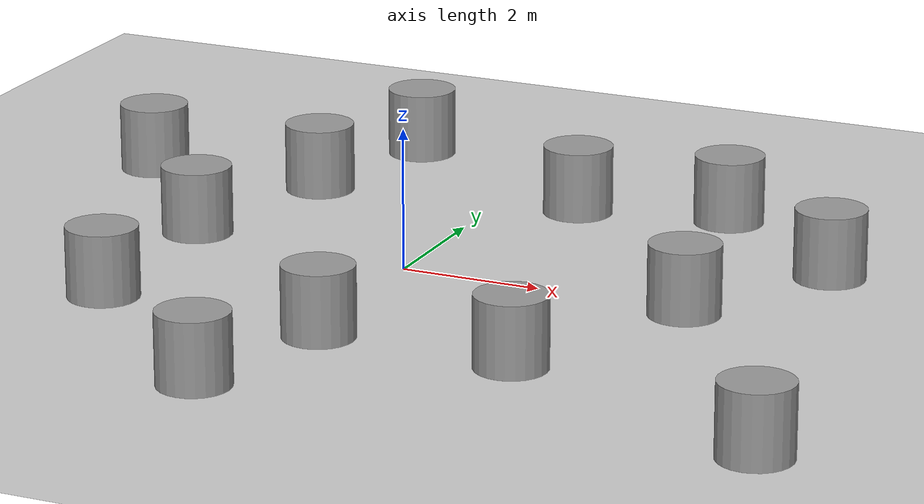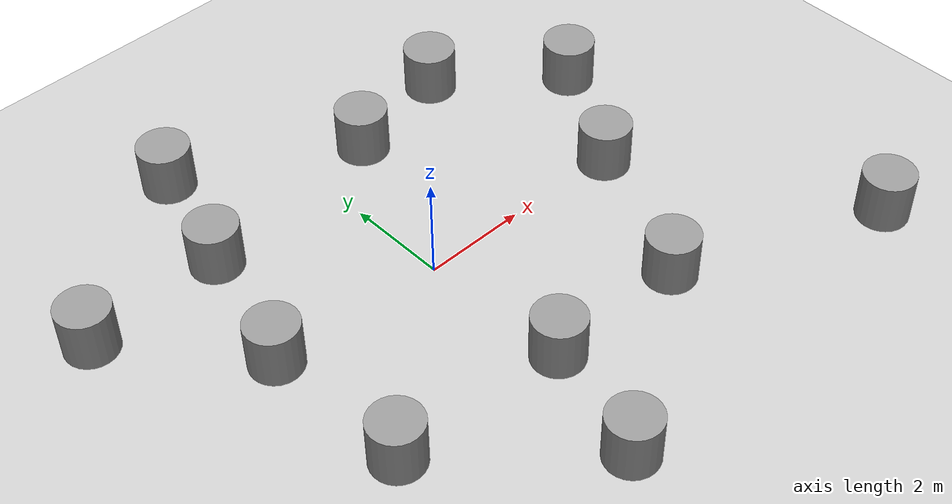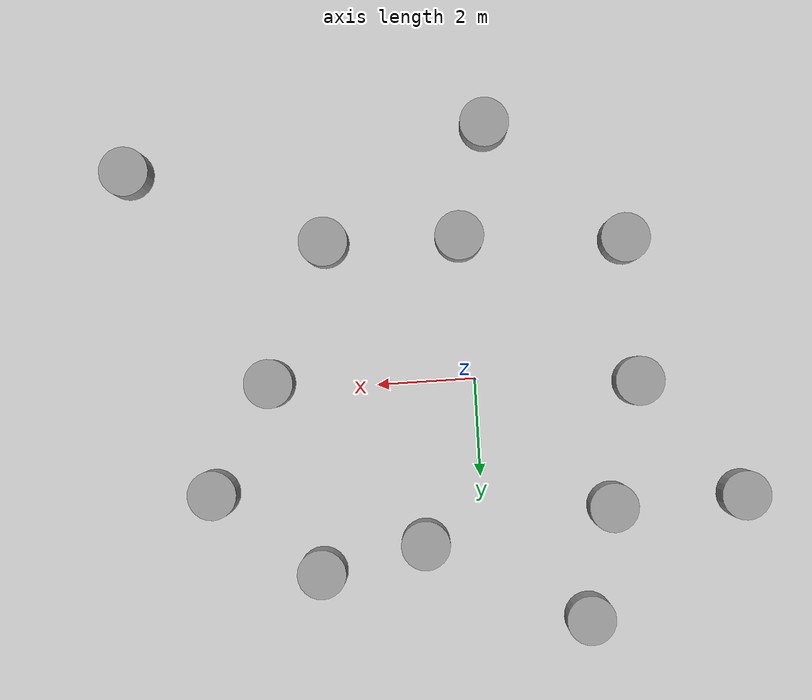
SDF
<sdf version="1.7">
 <world name="default">
  <light name="sun" type="directional">
   <pose>0 0 10 0 -0 0</pose>
   <diffuse>0.8 0.8 0.8 1</diffuse>
   <specular>0.2 0.2 0.2 1</specular>
   <attenuation>
    <range>1000</range>
    <constant>0.9</constant>
    <linear>0.01</linear>
    <quadratic>0.001</quadratic>
   </attenuation>
   <direction>-0.5 0.1 -0.9</direction>
   <spot><inner_angle>0</inner_angle><outer_angle>0</outer_angle><falloff>0</falloff></spot>
  </light>
  <model name="ground_plane">
   <static>1</static>
   <link name="link">
    <collision name="collision">
     <geometry><plane><normal>0 0 1</normal><size>100 100</size></plane></geometry>
     <surface><friction><ode><mu>100</mu><mu2>50</mu2></ode></friction></surface>
    </collision>
    <visual name="visual">
     <cast_shadows>0</cast_shadows>
     <geometry><plane><normal>0 0 1</normal><size>100 100</size></plane></geometry>
     <material>
      <script><uri>file://media/materials/scripts/gazebo.material</uri><name>Gazebo/Grey</name></script>
     </material>
    </visual>
   </link>
  </model>
  <gravity>0 0 -9.8</gravity>
  <magnetic_field>6e-06 2.3e-05 -4.2e-05</magnetic_field>
  <atmosphere type="adiabatic"/>
  <physics type="ode">
   <max_step_size>0.001</max_step_size>
   <real_time_factor>1</real_time_factor>
   <real_time_update_rate>1000</real_time_update_rate>
  </physics>
  <scene><ambient>0.4 0.4 0.4 1</ambient><background>0.7 0.7 0.7 1</background><shadows>1</shadows></scene>
  <audio><device>default</device></audio>
  <spherical_coordinates>
   <surface_model>EARTH_WGS84</surface_model>
   <latitude_deg>0</latitude_deg>
   <longitude_deg>0</longitude_deg>
   <elevation>0</elevation>
   <heading_deg>0</heading_deg>
  </spherical_coordinates>
  <model name="unit_cylinder">
   <pose>-2.64271 2.77119 0.499992 -3e-06 3e-06 0</pose>
   <link name="link">
    <inertial>
     <mass>1</mass>
     <inertia><ixx>0.145833</ixx><ixy>0</ixy><ixz>0</ixz><iyy>0.145833</iyy><iyz>0</iyz><izz>0.125</izz></inertia>
    </inertial>
    <collision name="collision">
     <geometry><cylinder><radius>0.5</radius><length>1</length></cylinder></geometry>
    </collision>
    <visual name="visual">
     <geometry><cylinder><radius>0.5</radius><length>1</length></cylinder></geometry>
     <material>
      <script><name>Gazebo/Grey</name><uri>file://media/materials/scripts/gazebo.material</uri></script>
     </material>
    </visual>
   </link>
  </model>
  <model name="unit_cylinder_0">
   <pose>1.20263 3.29827 0.499998 3e-06 -3e-06 0</pose>
   <link name="link">
    <inertial>
     <mass>1</mass>
     <inertia><ixx>0.145833</ixx><ixy>0</ixy><ixz>0</ixz><iyy>0.145833</iyy><iyz>0</iyz><izz>0.125</izz></inertia>
    </inertial>
    <collision name="collision">
     <geometry><cylinder><radius>0.5</radius><length>1</length></cylinder></geometry>
    </collision>
    <visual name="visual">
     <geometry><cylinder><radius>0.5</radius><length>1</length></cylinder></geometry>
     <material>
      <script><name>Gazebo/Grey</name><uri>file://media/materials/scripts/gazebo.material</uri></script>
     </material>
    </visual>
   </link>
  </model>
  <model name="unit_cylinder_1">
   <pose>-2.04341 5.01126 0.499992 -3e-06 3e-06 0</pose>
   <link name="link">
    <inertial>
     <mass>1</mass>
     <inertia><ixx>0.145833</ixx><ixy>0</ixy><ixz>0</ixz><iyy>0.145833</iyy><iyz>0</iyz><izz>0.125</izz></inertia>
    </inertial>
    <collision name="collision">
     <geometry><cylinder><radius>0.5</radius><length>1</length></cylinder></geometry>
    </collision>
    <visual name="visual">
     <geometry><cylinder><radius>0.5</radius><length>1</length></cylinder></geometry>
     <material>
      <script><name>Gazebo/Grey</name><uri>file://media/materials/scripts/gazebo.material</uri></script>
     </material>
    </visual>
   </link>
  </model>
  <model name="unit_cylinder_2">
   <pose>-3.32072 0.244767 0.499998 3e-06 -3e-06 0</pose>
   <link name="link">
    <inertial>
     <mass>1</mass>
     <inertia><ixx>0.145833</ixx><ixy>0</ixy><ixz>0</ixz><iyy>0.145833</iyy><iyz>0</iyz><izz>0.125</izz></inertia>
    </inertial>
    <collision name="collision">
     <geometry><cylinder><radius>0.5</radius><length>1</length></cylinder></geometry>
    </collision>
    <visual name="visual">
     <geometry><cylinder><radius>0.5</radius><length>1</length></cylinder></geometry>
     <material>
      <script><name>Gazebo/Grey</name><uri>file://media/materials/scripts/gazebo.material</uri></script>
     </material>
    </visual>
   </link>
  </model>
  <model name="unit_cylinder_3">
   <pose>-5.32054 2.68582 0.499992 -3e-06 3e-06 0</pose>
   <link name="link">
    <inertial>
     <mass>1</mass>
     <inertia><ixx>0.145833</ixx><ixy>0</ixy><ixz>0</ixz><iyy>0.145833</iyy><iyz>0</iyz><izz>0.125</izz></inertia>
    </inertial>
    <collision name="collision">
     <geometry><cylinder><radius>0.5</radius><length>1</length></cylinder></geometry>
    </collision>
    <visual name="visual">
     <geometry><cylinder><radius>0.5</radius><length>1</length></cylinder></geometry>
     <material>
      <script><name>Gazebo/Grey</name><uri>file://media/materials/scripts/gazebo.material</uri></script>
     </material>
    </visual>
   </link>
  </model>
  <model name="unit_cylinder_4">
   <pose>4.17334 -0.159618 0.499998 3e-06 -4e-06 0</pose>
   <link name="link">
    <inertial>
     <mass>1</mass>
     <inertia><ixx>0.145833</ixx><ixy>0</ixy><ixz>0</ixz><iyy>0.145833</iyy><iyz>0</iyz><izz>0.125</izz></inertia>
    </inertial>
    <collision name="collision">
     <geometry><cylinder><radius>0.5</radius><length>1</length></cylinder></geometry>
    </collision>
    <visual name="visual">
     <geometry><cylinder><radius>0.5</radius><length>1</length></cylinder></geometry>
     <material>
      <script><name>Gazebo/Grey</name><uri>file://media/materials/scripts/gazebo.material</uri></script>
     </material>
    </visual>
   </link>
  </model>
  <model name="unit_cylinder_5">
   <pose>3.33333 3.74851 0.499992 -3e-06 4e-06 0</pose>
   <link name="link">
    <inertial>
     <mass>1</mass>
     <inertia><ixx>0.145833</ixx><ixy>0</ixy><ixz>0</ixz><iyy>0.145833</iyy><iyz>0</iyz><izz>0.125</izz></inertia>
    </inertial>
    <collision name="collision">
     <geometry><cylinder><radius>0.5</radius><length>1</length></cylinder></geometry>
    </collision>
    <visual name="visual">
     <geometry><cylinder><radius>0.5</radius><length>1</length></cylinder></geometry>
     <material>
      <script><name>Gazebo/Grey</name><uri>file://media/materials/scripts/gazebo.material</uri></script>
     </material>
    </visual>
   </link>
  </model>
  <model name="unit_cylinder_6">
   <pose>0.139519 -2.91263 0.499998 3e-06 -4e-06 0</pose>
   <link name="link">
    <inertial>
     <mass>1</mass>
     <inertia><ixx>0.145833</ixx><ixy>0</ixy><ixz>0</ixz><iyy>0.145833</iyy><iyz>0</iyz><izz>0.125</izz></inertia>
    </inertial>
    <collision name="collision">
     <geometry><cylinder><radius>0.5</radius><length>1</length></cylinder></geometry>
    </collision>
    <visual name="visual">
     <geometry><cylinder><radius>0.5</radius><length>1</length></cylinder></geometry>
     <material>
      <script><name>Gazebo/Grey</name><uri>file://media/materials/scripts/gazebo.material</uri></script>
     </material>
    </visual>
   </link>
  </model>
  <model name="unit_cylinder_7">
   <pose>2.89391 -2.95564 0.499992 -3e-06 -4e-06 -0</pose>
   <link name="link">
    <inertial>
     <mass>1</mass>
     <inertia><ixx>0.145833</ixx><ixy>0</ixy><ixz>0</ixz><iyy>0.145833</iyy><iyz>0</iyz><izz>0.125</izz></inertia>
    </inertial>
    <collision name="collision">
     <geometry><cylinder><radius>0.5</radius><length>1</length></cylinder></geometry>
    </collision>
    <visual name="visual">
     <geometry><cylinder><radius>0.5</radius><length>1</length></cylinder></geometry>
     <material>
      <script><name>Gazebo/Grey</name><uri>file://media/materials/scripts/gazebo.material</uri></script>
     </material>
    </visual>
   </link>
  </model>
  <model name="unit_cylinder_8">
   <pose>-3.20528 -2.66247 0.499993 -3e-06 -3e-06 0</pose>
   <link name="link">
    <inertial>
     <mass>1</mass>
     <inertia><ixx>0.145833</ixx><ixy>0</ixy><ixz>0</ixz><iyy>0.145833</iyy><iyz>0</iyz><izz>0.125</izz></inertia>
    </inertial>
    <collision name="collision">
     <geometry><cylinder><radius>0.5</radius><length>1</length></cylinder></geometry>
    </collision>
    <visual name="visual">
     <geometry><cylinder><radius>0.5</radius><length>1</length></cylinder></geometry>
     <material>
      <script><name>Gazebo/Grey</name><uri>file://media/materials/scripts/gazebo.material</uri></script>
     </material>
    </visual>
   </link>
  </model>
  <model name="unit_cylinder_9">
   <pose>5.44738 2.02057 0.499997 3e-06 4e-06 -0</pose>
   <link name="link">
    <inertial>
     <mass>1</mass>
     <inertia><ixx>0.145833</ixx><ixy>0</ixy><ixz>0</ixz><iyy>0.145833</iyy><iyz>0</iyz><izz>0.125</izz></inertia>
    </inertial>
    <collision name="collision">
     <geometry><cylinder><radius>0.5</radius><length>1</length></cylinder></geometry>
    </collision>
    <visual name="visual">
     <geometry><cylinder><radius>0.5</radius><length>1</length></cylinder></geometry>
     <material>
      <script><name>Gazebo/Grey</name><uri>file://media/materials/scripts/gazebo.material</uri></script>
     </material>
    </visual>
   </link>
  </model>
  <model name="unit_cylinder_10">
   <pose>-0.502293 -5.15991 0.499993 -3e-06 -4e-06 -0</pose>
   <link name="link">
    <inertial>
     <mass>1</mass>
     <inertia><ixx>0.145833</ixx><ixy>0</ixy><ixz>0</ixz><iyy>0.145833</iyy><iyz>0</iyz><izz>0.125</izz></inertia>
    </inertial>
    <collision name="collision">
     <geometry><cylinder><radius>0.5</radius><length>1</length></cylinder></geometry>
    </collision>
    <visual name="visual">
     <geometry><cylinder><radius>0.5</radius><length>1</length></cylinder></geometry>
     <material>
      <script><name>Gazebo/Grey</name><uri>file://media/materials/scripts/gazebo.material</uri></script>
     </material>
    </visual>
   </link>
  </model>
  <model name="unit_cylinder_11">
   <pose>6.81676 -4.61486 0.499997 3e-06 4e-06 -0</pose>
   <link name="link">
    <inertial>
     <mass>1</mass>
     <inertia><ixx>0.145833</ixx><ixy>0</ixy><ixz>0</ixz><iyy>0.145833</iyy><iyz>0</iyz><izz>0.125</izz></inertia>
    </inertial>
    <collision name="collision">
     <geometry><cylinder><radius>0.5</radius><length>1</length></cylinder></geometry>
    </collision>
    <visual name="visual">
     <geometry><cylinder><radius>0.5</radius><length>1</length></cylinder></geometry>
     <material>
      <script><name>Gazebo/Grey</name><uri>file://media/materials/scripts/gazebo.material</uri></script>
     </material>
    </visual>
   </link>
  </model>
 </world>
</sdf>
